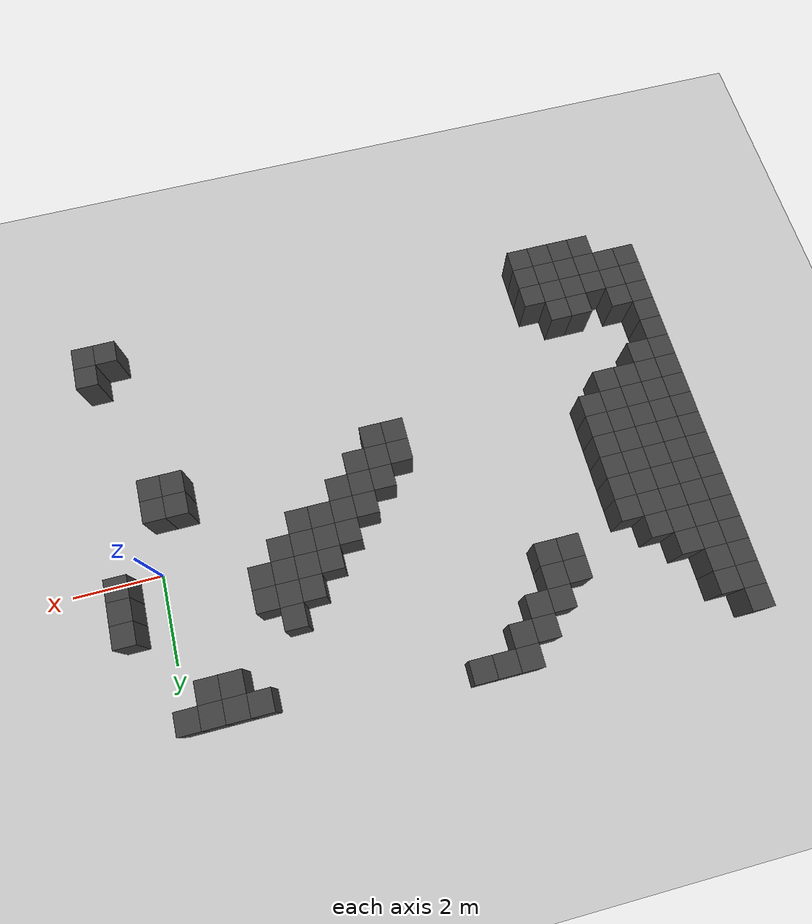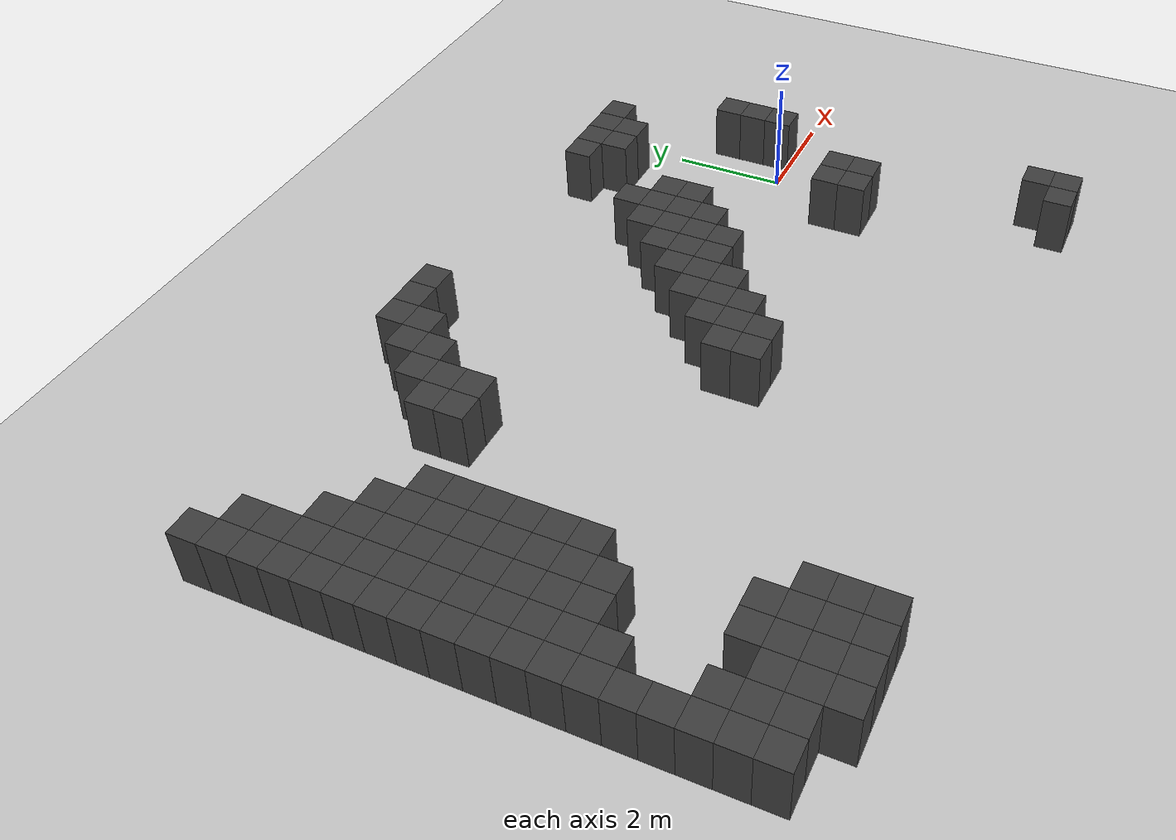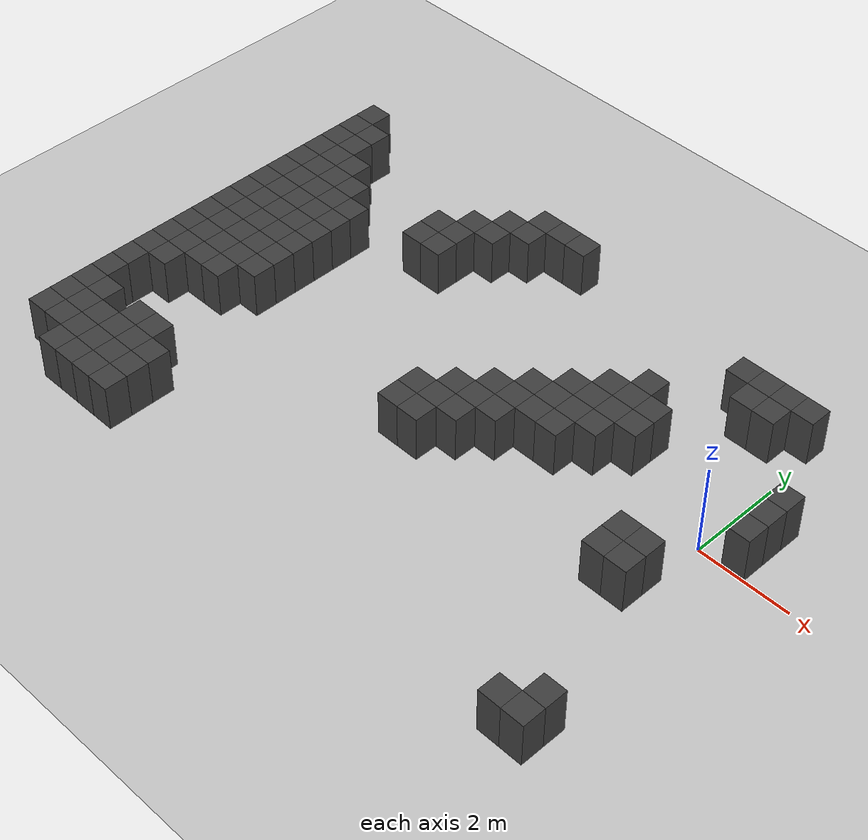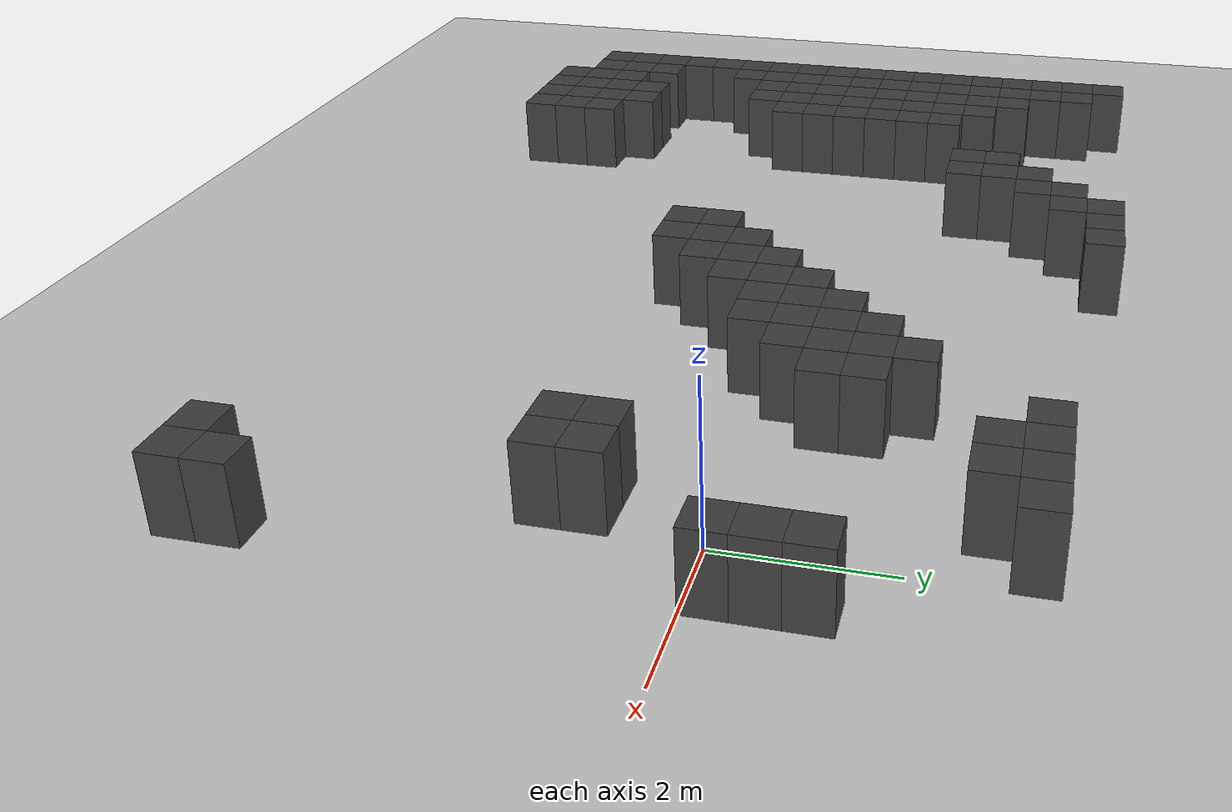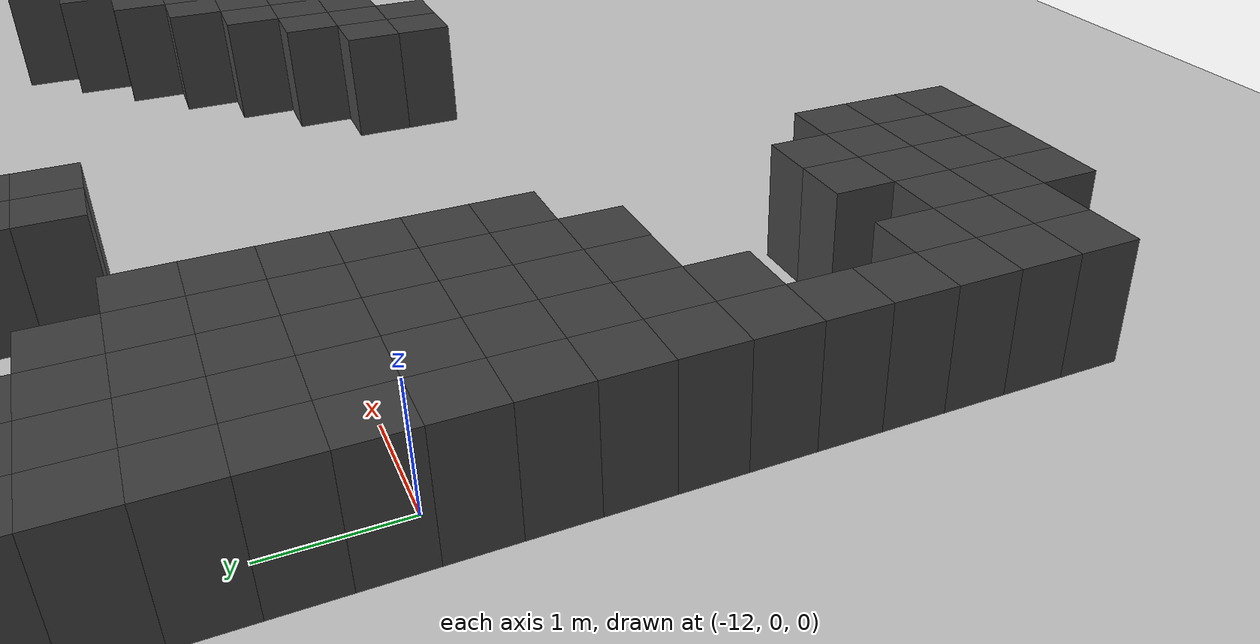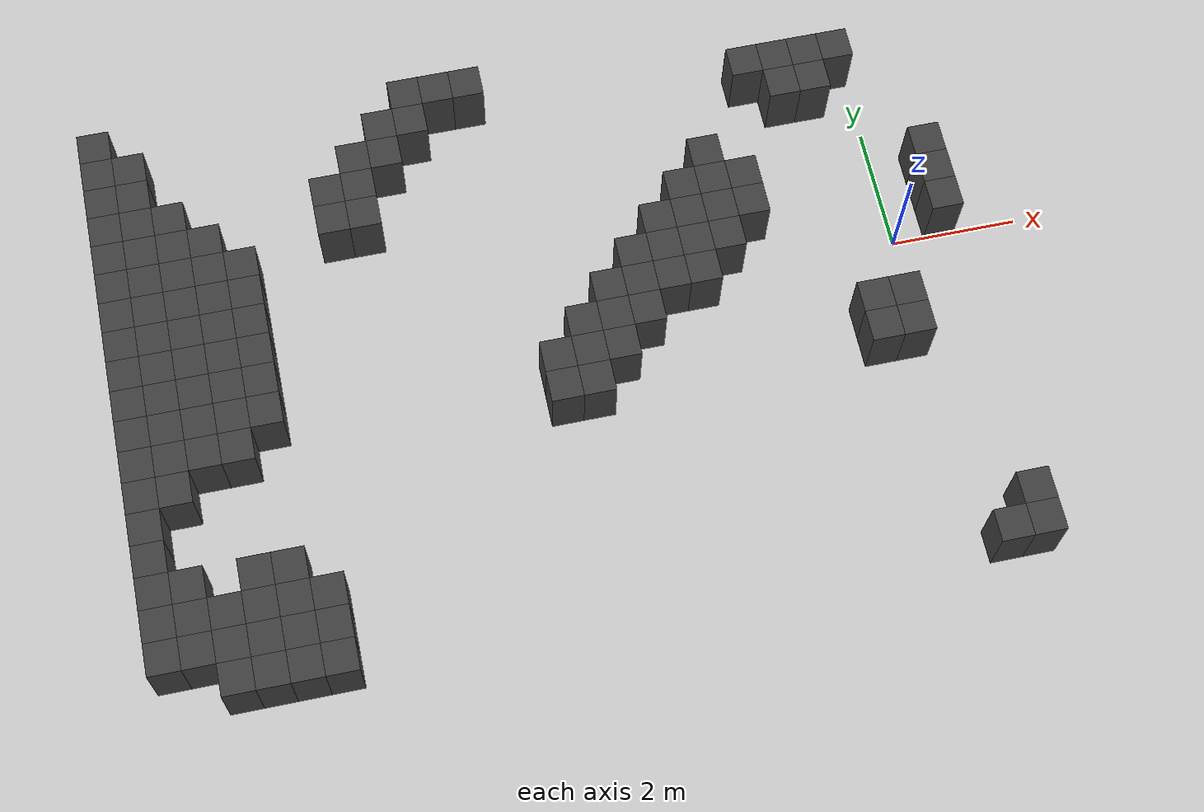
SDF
<sdf version="1.7">
 <world name="map_8661">
  <model name="ground_plane">
   <static>true</static>
   <link name="link">
    <collision name="collision">
     <geometry><plane><normal>0 0 1</normal><size>200 200</size></plane></geometry>
    </collision>
    <visual name="visual">
     <geometry><plane><normal>0 0 1</normal><size>200 200</size></plane></geometry>
     <material><ambient>0.8 0.8 0.8 1</ambient><diffuse>0.8 0.8 0.8 1</diffuse></material>
    </visual>
   </link>
  </model>
  <model name="maze_environment">
   <static>true</static>
   <link name="wall_243">
    <pose>-12.250 3.750 0.500 0 0 0</pose>
    <collision name="col"><geometry><box><size>0.5 0.5 1.0</size></box></geometry></collision>
    <visual name="vis">
     <geometry><box><size>0.5 0.5 1.0</size></box></geometry>
     <material><ambient>0.15 0.15 0.15 1</ambient><diffuse>0.25 0.25 0.25 1</diffuse></material>
    </visual>
   </link>
   <link name="wall_244">
    <pose>-7.250 3.750 0.500 0 0 0</pose>
    <collision name="col"><geometry><box><size>0.5 0.5 1.0</size></box></geometry></collision>
    <visual name="vis">
     <geometry><box><size>0.5 0.5 1.0</size></box></geometry>
     <material><ambient>0.15 0.15 0.15 1</ambient><diffuse>0.25 0.25 0.25 1</diffuse></material>
    </visual>
   </link>
   <link name="wall_245">
    <pose>-6.750 3.750 0.500 0 0 0</pose>
    <collision name="col"><geometry><box><size>0.5 0.5 1.0</size></box></geometry></collision>
    <visual name="vis">
     <geometry><box><size>0.5 0.5 1.0</size></box></geometry>
     <material><ambient>0.15 0.15 0.15 1</ambient><diffuse>0.25 0.25 0.25 1</diffuse></material>
    </visual>
   </link>
   <link name="wall_246">
    <pose>-6.250 3.750 0.500 0 0 0</pose>
    <collision name="col"><geometry><box><size>0.5 0.5 1.0</size></box></geometry></collision>
    <visual name="vis">
     <geometry><box><size>0.5 0.5 1.0</size></box></geometry>
     <material><ambient>0.15 0.15 0.15 1</ambient><diffuse>0.25 0.25 0.25 1</diffuse></material>
    </visual>
   </link>
   <link name="wall_257">
    <pose>-12.250 3.250 0.500 0 0 0</pose>
    <collision name="col"><geometry><box><size>0.5 0.5 1.0</size></box></geometry></collision>
    <visual name="vis">
     <geometry><box><size>0.5 0.5 1.0</size></box></geometry>
     <material><ambient>0.15 0.15 0.15 1</ambient><diffuse>0.25 0.25 0.25 1</diffuse></material>
    </visual>
   </link>
   <link name="wall_258">
    <pose>-11.750 3.250 0.500 0 0 0</pose>
    <collision name="col"><geometry><box><size>0.5 0.5 1.0</size></box></geometry></collision>
    <visual name="vis">
     <geometry><box><size>0.5 0.5 1.0</size></box></geometry>
     <material><ambient>0.15 0.15 0.15 1</ambient><diffuse>0.25 0.25 0.25 1</diffuse></material>
    </visual>
   </link>
   <link name="wall_259">
    <pose>-7.750 3.250 0.500 0 0 0</pose>
    <collision name="col"><geometry><box><size>0.5 0.5 1.0</size></box></geometry></collision>
    <visual name="vis">
     <geometry><box><size>0.5 0.5 1.0</size></box></geometry>
     <material><ambient>0.15 0.15 0.15 1</ambient><diffuse>0.25 0.25 0.25 1</diffuse></material>
    </visual>
   </link>
   <link name="wall_260">
    <pose>-7.250 3.250 0.500 0 0 0</pose>
    <collision name="col"><geometry><box><size>0.5 0.5 1.0</size></box></geometry></collision>
    <visual name="vis">
     <geometry><box><size>0.5 0.5 1.0</size></box></geometry>
     <material><ambient>0.15 0.15 0.15 1</ambient><diffuse>0.25 0.25 0.25 1</diffuse></material>
    </visual>
   </link>
   <link name="wall_261">
    <pose>-1.750 3.250 0.500 0 0 0</pose>
    <collision name="col"><geometry><box><size>0.5 0.5 1.0</size></box></geometry></collision>
    <visual name="vis">
     <geometry><box><size>0.5 0.5 1.0</size></box></geometry>
     <material><ambient>0.15 0.15 0.15 1</ambient><diffuse>0.25 0.25 0.25 1</diffuse></material>
    </visual>
   </link>
   <link name="wall_262">
    <pose>-1.250 3.250 0.500 0 0 0</pose>
    <collision name="col"><geometry><box><size>0.5 0.5 1.0</size></box></geometry></collision>
    <visual name="vis">
     <geometry><box><size>0.5 0.5 1.0</size></box></geometry>
     <material><ambient>0.15 0.15 0.15 1</ambient><diffuse>0.25 0.25 0.25 1</diffuse></material>
    </visual>
   </link>
   <link name="wall_263">
    <pose>-0.750 3.250 0.500 0 0 0</pose>
    <collision name="col"><geometry><box><size>0.5 0.5 1.0</size></box></geometry></collision>
    <visual name="vis">
     <geometry><box><size>0.5 0.5 1.0</size></box></geometry>
     <material><ambient>0.15 0.15 0.15 1</ambient><diffuse>0.25 0.25 0.25 1</diffuse></material>
    </visual>
   </link>
   <link name="wall_264">
    <pose>-0.250 3.250 0.500 0 0 0</pose>
    <collision name="col"><geometry><box><size>0.5 0.5 1.0</size></box></geometry></collision>
    <visual name="vis">
     <geometry><box><size>0.5 0.5 1.0</size></box></geometry>
     <material><ambient>0.15 0.15 0.15 1</ambient><diffuse>0.25 0.25 0.25 1</diffuse></material>
    </visual>
   </link>
   <link name="wall_274">
    <pose>-12.250 2.750 0.500 0 0 0</pose>
    <collision name="col"><geometry><box><size>0.5 0.5 1.0</size></box></geometry></collision>
    <visual name="vis">
     <geometry><box><size>0.5 0.5 1.0</size></box></geometry>
     <material><ambient>0.15 0.15 0.15 1</ambient><diffuse>0.25 0.25 0.25 1</diffuse></material>
    </visual>
   </link>
   <link name="wall_275">
    <pose>-11.750 2.750 0.500 0 0 0</pose>
    <collision name="col"><geometry><box><size>0.5 0.5 1.0</size></box></geometry></collision>
    <visual name="vis">
     <geometry><box><size>0.5 0.5 1.0</size></box></geometry>
     <material><ambient>0.15 0.15 0.15 1</ambient><diffuse>0.25 0.25 0.25 1</diffuse></material>
    </visual>
   </link>
   <link name="wall_276">
    <pose>-8.250 2.750 0.500 0 0 0</pose>
    <collision name="col"><geometry><box><size>0.5 0.5 1.0</size></box></geometry></collision>
    <visual name="vis">
     <geometry><box><size>0.5 0.5 1.0</size></box></geometry>
     <material><ambient>0.15 0.15 0.15 1</ambient><diffuse>0.25 0.25 0.25 1</diffuse></material>
    </visual>
   </link>
   <link name="wall_277">
    <pose>-7.750 2.750 0.500 0 0 0</pose>
    <collision name="col"><geometry><box><size>0.5 0.5 1.0</size></box></geometry></collision>
    <visual name="vis">
     <geometry><box><size>0.5 0.5 1.0</size></box></geometry>
     <material><ambient>0.15 0.15 0.15 1</ambient><diffuse>0.25 0.25 0.25 1</diffuse></material>
    </visual>
   </link>
   <link name="wall_278">
    <pose>-1.250 2.750 0.500 0 0 0</pose>
    <collision name="col"><geometry><box><size>0.5 0.5 1.0</size></box></geometry></collision>
    <visual name="vis">
     <geometry><box><size>0.5 0.5 1.0</size></box></geometry>
     <material><ambient>0.15 0.15 0.15 1</ambient><diffuse>0.25 0.25 0.25 1</diffuse></material>
    </visual>
   </link>
   <link name="wall_279">
    <pose>-0.750 2.750 0.500 0 0 0</pose>
    <collision name="col"><geometry><box><size>0.5 0.5 1.0</size></box></geometry></collision>
    <visual name="vis">
     <geometry><box><size>0.5 0.5 1.0</size></box></geometry>
     <material><ambient>0.15 0.15 0.15 1</ambient><diffuse>0.25 0.25 0.25 1</diffuse></material>
    </visual>
   </link>
   <link name="wall_289">
    <pose>-12.250 2.250 0.500 0 0 0</pose>
    <collision name="col"><geometry><box><size>0.5 0.5 1.0</size></box></geometry></collision>
    <visual name="vis">
     <geometry><box><size>0.5 0.5 1.0</size></box></geometry>
     <material><ambient>0.15 0.15 0.15 1</ambient><diffuse>0.25 0.25 0.25 1</diffuse></material>
    </visual>
   </link>
   <link name="wall_290">
    <pose>-11.750 2.250 0.500 0 0 0</pose>
    <collision name="col"><geometry><box><size>0.5 0.5 1.0</size></box></geometry></collision>
    <visual name="vis">
     <geometry><box><size>0.5 0.5 1.0</size></box></geometry>
     <material><ambient>0.15 0.15 0.15 1</ambient><diffuse>0.25 0.25 0.25 1</diffuse></material>
    </visual>
   </link>
   <link name="wall_291">
    <pose>-11.250 2.250 0.500 0 0 0</pose>
    <collision name="col"><geometry><box><size>0.5 0.5 1.0</size></box></geometry></collision>
    <visual name="vis">
     <geometry><box><size>0.5 0.5 1.0</size></box></geometry>
     <material><ambient>0.15 0.15 0.15 1</ambient><diffuse>0.25 0.25 0.25 1</diffuse></material>
    </visual>
   </link>
   <link name="wall_292">
    <pose>-8.750 2.250 0.500 0 0 0</pose>
    <collision name="col"><geometry><box><size>0.5 0.5 1.0</size></box></geometry></collision>
    <visual name="vis">
     <geometry><box><size>0.5 0.5 1.0</size></box></geometry>
     <material><ambient>0.15 0.15 0.15 1</ambient><diffuse>0.25 0.25 0.25 1</diffuse></material>
    </visual>
   </link>
   <link name="wall_293">
    <pose>-8.250 2.250 0.500 0 0 0</pose>
    <collision name="col"><geometry><box><size>0.5 0.5 1.0</size></box></geometry></collision>
    <visual name="vis">
     <geometry><box><size>0.5 0.5 1.0</size></box></geometry>
     <material><ambient>0.15 0.15 0.15 1</ambient><diffuse>0.25 0.25 0.25 1</diffuse></material>
    </visual>
   </link>
   <link name="wall_299">
    <pose>-12.250 1.750 0.500 0 0 0</pose>
    <collision name="col"><geometry><box><size>0.5 0.5 1.0</size></box></geometry></collision>
    <visual name="vis">
     <geometry><box><size>0.5 0.5 1.0</size></box></geometry>
     <material><ambient>0.15 0.15 0.15 1</ambient><diffuse>0.25 0.25 0.25 1</diffuse></material>
    </visual>
   </link>
   <link name="wall_300">
    <pose>-11.750 1.750 0.500 0 0 0</pose>
    <collision name="col"><geometry><box><size>0.5 0.5 1.0</size></box></geometry></collision>
    <visual name="vis">
     <geometry><box><size>0.5 0.5 1.0</size></box></geometry>
     <material><ambient>0.15 0.15 0.15 1</ambient><diffuse>0.25 0.25 0.25 1</diffuse></material>
    </visual>
   </link>
   <link name="wall_301">
    <pose>-11.250 1.750 0.500 0 0 0</pose>
    <collision name="col"><geometry><box><size>0.5 0.5 1.0</size></box></geometry></collision>
    <visual name="vis">
     <geometry><box><size>0.5 0.5 1.0</size></box></geometry>
     <material><ambient>0.15 0.15 0.15 1</ambient><diffuse>0.25 0.25 0.25 1</diffuse></material>
    </visual>
   </link>
   <link name="wall_302">
    <pose>-10.750 1.750 0.500 0 0 0</pose>
    <collision name="col"><geometry><box><size>0.5 0.5 1.0</size></box></geometry></collision>
    <visual name="vis">
     <geometry><box><size>0.5 0.5 1.0</size></box></geometry>
     <material><ambient>0.15 0.15 0.15 1</ambient><diffuse>0.25 0.25 0.25 1</diffuse></material>
    </visual>
   </link>
   <link name="wall_303">
    <pose>-8.750 1.750 0.500 0 0 0</pose>
    <collision name="col"><geometry><box><size>0.5 0.5 1.0</size></box></geometry></collision>
    <visual name="vis">
     <geometry><box><size>0.5 0.5 1.0</size></box></geometry>
     <material><ambient>0.15 0.15 0.15 1</ambient><diffuse>0.25 0.25 0.25 1</diffuse></material>
    </visual>
   </link>
   <link name="wall_304">
    <pose>-8.250 1.750 0.500 0 0 0</pose>
    <collision name="col"><geometry><box><size>0.5 0.5 1.0</size></box></geometry></collision>
    <visual name="vis">
     <geometry><box><size>0.5 0.5 1.0</size></box></geometry>
     <material><ambient>0.15 0.15 0.15 1</ambient><diffuse>0.25 0.25 0.25 1</diffuse></material>
    </visual>
   </link>
   <link name="wall_305">
    <pose>-2.750 1.750 0.500 0 0 0</pose>
    <collision name="col"><geometry><box><size>0.5 0.5 1.0</size></box></geometry></collision>
    <visual name="vis">
     <geometry><box><size>0.5 0.5 1.0</size></box></geometry>
     <material><ambient>0.15 0.15 0.15 1</ambient><diffuse>0.25 0.25 0.25 1</diffuse></material>
    </visual>
   </link>
   <link name="wall_309">
    <pose>-12.250 1.250 0.500 0 0 0</pose>
    <collision name="col"><geometry><box><size>0.5 0.5 1.0</size></box></geometry></collision>
    <visual name="vis">
     <geometry><box><size>0.5 0.5 1.0</size></box></geometry>
     <material><ambient>0.15 0.15 0.15 1</ambient><diffuse>0.25 0.25 0.25 1</diffuse></material>
    </visual>
   </link>
   <link name="wall_310">
    <pose>-11.750 1.250 0.500 0 0 0</pose>
    <collision name="col"><geometry><box><size>0.5 0.5 1.0</size></box></geometry></collision>
    <visual name="vis">
     <geometry><box><size>0.5 0.5 1.0</size></box></geometry>
     <material><ambient>0.15 0.15 0.15 1</ambient><diffuse>0.25 0.25 0.25 1</diffuse></material>
    </visual>
   </link>
   <link name="wall_311">
    <pose>-11.250 1.250 0.500 0 0 0</pose>
    <collision name="col"><geometry><box><size>0.5 0.5 1.0</size></box></geometry></collision>
    <visual name="vis">
     <geometry><box><size>0.5 0.5 1.0</size></box></geometry>
     <material><ambient>0.15 0.15 0.15 1</ambient><diffuse>0.25 0.25 0.25 1</diffuse></material>
    </visual>
   </link>
   <link name="wall_312">
    <pose>-10.750 1.250 0.500 0 0 0</pose>
    <collision name="col"><geometry><box><size>0.5 0.5 1.0</size></box></geometry></collision>
    <visual name="vis">
     <geometry><box><size>0.5 0.5 1.0</size></box></geometry>
     <material><ambient>0.15 0.15 0.15 1</ambient><diffuse>0.25 0.25 0.25 1</diffuse></material>
    </visual>
   </link>
   <link name="wall_313">
    <pose>-10.250 1.250 0.500 0 0 0</pose>
    <collision name="col"><geometry><box><size>0.5 0.5 1.0</size></box></geometry></collision>
    <visual name="vis">
     <geometry><box><size>0.5 0.5 1.0</size></box></geometry>
     <material><ambient>0.15 0.15 0.15 1</ambient><diffuse>0.25 0.25 0.25 1</diffuse></material>
    </visual>
   </link>
   <link name="wall_314">
    <pose>-3.250 1.250 0.500 0 0 0</pose>
    <collision name="col"><geometry><box><size>0.5 0.5 1.0</size></box></geometry></collision>
    <visual name="vis">
     <geometry><box><size>0.5 0.5 1.0</size></box></geometry>
     <material><ambient>0.15 0.15 0.15 1</ambient><diffuse>0.25 0.25 0.25 1</diffuse></material>
    </visual>
   </link>
   <link name="wall_315">
    <pose>-2.750 1.250 0.500 0 0 0</pose>
    <collision name="col"><geometry><box><size>0.5 0.5 1.0</size></box></geometry></collision>
    <visual name="vis">
     <geometry><box><size>0.5 0.5 1.0</size></box></geometry>
     <material><ambient>0.15 0.15 0.15 1</ambient><diffuse>0.25 0.25 0.25 1</diffuse></material>
    </visual>
   </link>
   <link name="wall_316">
    <pose>-2.250 1.250 0.500 0 0 0</pose>
    <collision name="col"><geometry><box><size>0.5 0.5 1.0</size></box></geometry></collision>
    <visual name="vis">
     <geometry><box><size>0.5 0.5 1.0</size></box></geometry>
     <material><ambient>0.15 0.15 0.15 1</ambient><diffuse>0.25 0.25 0.25 1</diffuse></material>
    </visual>
   </link>
   <link name="wall_317">
    <pose>0.750 1.250 0.500 0 0 0</pose>
    <collision name="col"><geometry><box><size>0.5 0.5 1.0</size></box></geometry></collision>
    <visual name="vis">
     <geometry><box><size>0.5 0.5 1.0</size></box></geometry>
     <material><ambient>0.15 0.15 0.15 1</ambient><diffuse>0.25 0.25 0.25 1</diffuse></material>
    </visual>
   </link>
   <link name="wall_321">
    <pose>-12.250 0.750 0.500 0 0 0</pose>
    <collision name="col"><geometry><box><size>0.5 0.5 1.0</size></box></geometry></collision>
    <visual name="vis">
     <geometry><box><size>0.5 0.5 1.0</size></box></geometry>
     <material><ambient>0.15 0.15 0.15 1</ambient><diffuse>0.25 0.25 0.25 1</diffuse></material>
    </visual>
   </link>
   <link name="wall_322">
    <pose>-11.750 0.750 0.500 0 0 0</pose>
    <collision name="col"><geometry><box><size>0.5 0.5 1.0</size></box></geometry></collision>
    <visual name="vis">
     <geometry><box><size>0.5 0.5 1.0</size></box></geometry>
     <material><ambient>0.15 0.15 0.15 1</ambient><diffuse>0.25 0.25 0.25 1</diffuse></material>
    </visual>
   </link>
   <link name="wall_323">
    <pose>-11.250 0.750 0.500 0 0 0</pose>
    <collision name="col"><geometry><box><size>0.5 0.5 1.0</size></box></geometry></collision>
    <visual name="vis">
     <geometry><box><size>0.5 0.5 1.0</size></box></geometry>
     <material><ambient>0.15 0.15 0.15 1</ambient><diffuse>0.25 0.25 0.25 1</diffuse></material>
    </visual>
   </link>
   <link name="wall_324">
    <pose>-10.750 0.750 0.500 0 0 0</pose>
    <collision name="col"><geometry><box><size>0.5 0.5 1.0</size></box></geometry></collision>
    <visual name="vis">
     <geometry><box><size>0.5 0.5 1.0</size></box></geometry>
     <material><ambient>0.15 0.15 0.15 1</ambient><diffuse>0.25 0.25 0.25 1</diffuse></material>
    </visual>
   </link>
   <link name="wall_325">
    <pose>-10.250 0.750 0.500 0 0 0</pose>
    <collision name="col"><geometry><box><size>0.5 0.5 1.0</size></box></geometry></collision>
    <visual name="vis">
     <geometry><box><size>0.5 0.5 1.0</size></box></geometry>
     <material><ambient>0.15 0.15 0.15 1</ambient><diffuse>0.25 0.25 0.25 1</diffuse></material>
    </visual>
   </link>
   <link name="wall_326">
    <pose>-3.750 0.750 0.500 0 0 0</pose>
    <collision name="col"><geometry><box><size>0.5 0.5 1.0</size></box></geometry></collision>
    <visual name="vis">
     <geometry><box><size>0.5 0.5 1.0</size></box></geometry>
     <material><ambient>0.15 0.15 0.15 1</ambient><diffuse>0.25 0.25 0.25 1</diffuse></material>
    </visual>
   </link>
   <link name="wall_327">
    <pose>-3.250 0.750 0.500 0 0 0</pose>
    <collision name="col"><geometry><box><size>0.5 0.5 1.0</size></box></geometry></collision>
    <visual name="vis">
     <geometry><box><size>0.5 0.5 1.0</size></box></geometry>
     <material><ambient>0.15 0.15 0.15 1</ambient><diffuse>0.25 0.25 0.25 1</diffuse></material>
    </visual>
   </link>
   <link name="wall_328">
    <pose>-2.750 0.750 0.500 0 0 0</pose>
    <collision name="col"><geometry><box><size>0.5 0.5 1.0</size></box></geometry></collision>
    <visual name="vis">
     <geometry><box><size>0.5 0.5 1.0</size></box></geometry>
     <material><ambient>0.15 0.15 0.15 1</ambient><diffuse>0.25 0.25 0.25 1</diffuse></material>
    </visual>
   </link>
   <link name="wall_329">
    <pose>-2.250 0.750 0.500 0 0 0</pose>
    <collision name="col"><geometry><box><size>0.5 0.5 1.0</size></box></geometry></collision>
    <visual name="vis">
     <geometry><box><size>0.5 0.5 1.0</size></box></geometry>
     <material><ambient>0.15 0.15 0.15 1</ambient><diffuse>0.25 0.25 0.25 1</diffuse></material>
    </visual>
   </link>
   <link name="wall_330">
    <pose>0.750 0.750 0.500 0 0 0</pose>
    <collision name="col"><geometry><box><size>0.5 0.5 1.0</size></box></geometry></collision>
    <visual name="vis">
     <geometry><box><size>0.5 0.5 1.0</size></box></geometry>
     <material><ambient>0.15 0.15 0.15 1</ambient><diffuse>0.25 0.25 0.25 1</diffuse></material>
    </visual>
   </link>
   <link name="wall_334">
    <pose>-12.250 0.250 0.500 0 0 0</pose>
    <collision name="col"><geometry><box><size>0.5 0.5 1.0</size></box></geometry></collision>
    <visual name="vis">
     <geometry><box><size>0.5 0.5 1.0</size></box></geometry>
     <material><ambient>0.15 0.15 0.15 1</ambient><diffuse>0.25 0.25 0.25 1</diffuse></material>
    </visual>
   </link>
   <link name="wall_335">
    <pose>-11.750 0.250 0.500 0 0 0</pose>
    <collision name="col"><geometry><box><size>0.5 0.5 1.0</size></box></geometry></collision>
    <visual name="vis">
     <geometry><box><size>0.5 0.5 1.0</size></box></geometry>
     <material><ambient>0.15 0.15 0.15 1</ambient><diffuse>0.25 0.25 0.25 1</diffuse></material>
    </visual>
   </link>
   <link name="wall_336">
    <pose>-11.250 0.250 0.500 0 0 0</pose>
    <collision name="col"><geometry><box><size>0.5 0.5 1.0</size></box></geometry></collision>
    <visual name="vis">
     <geometry><box><size>0.5 0.5 1.0</size></box></geometry>
     <material><ambient>0.15 0.15 0.15 1</ambient><diffuse>0.25 0.25 0.25 1</diffuse></material>
    </visual>
   </link>
   <link name="wall_337">
    <pose>-10.750 0.250 0.500 0 0 0</pose>
    <collision name="col"><geometry><box><size>0.5 0.5 1.0</size></box></geometry></collision>
    <visual name="vis">
     <geometry><box><size>0.5 0.5 1.0</size></box></geometry>
     <material><ambient>0.15 0.15 0.15 1</ambient><diffuse>0.25 0.25 0.25 1</diffuse></material>
    </visual>
   </link>
   <link name="wall_338">
    <pose>-10.250 0.250 0.500 0 0 0</pose>
    <collision name="col"><geometry><box><size>0.5 0.5 1.0</size></box></geometry></collision>
    <visual name="vis">
     <geometry><box><size>0.5 0.5 1.0</size></box></geometry>
     <material><ambient>0.15 0.15 0.15 1</ambient><diffuse>0.25 0.25 0.25 1</diffuse></material>
    </visual>
   </link>
   <link name="wall_339">
    <pose>-4.250 0.250 0.500 0 0 0</pose>
    <collision name="col"><geometry><box><size>0.5 0.5 1.0</size></box></geometry></collision>
    <visual name="vis">
     <geometry><box><size>0.5 0.5 1.0</size></box></geometry>
     <material><ambient>0.15 0.15 0.15 1</ambient><diffuse>0.25 0.25 0.25 1</diffuse></material>
    </visual>
   </link>
   <link name="wall_340">
    <pose>-3.750 0.250 0.500 0 0 0</pose>
    <collision name="col"><geometry><box><size>0.5 0.5 1.0</size></box></geometry></collision>
    <visual name="vis">
     <geometry><box><size>0.5 0.5 1.0</size></box></geometry>
     <material><ambient>0.15 0.15 0.15 1</ambient><diffuse>0.25 0.25 0.25 1</diffuse></material>
    </visual>
   </link>
   <link name="wall_341">
    <pose>-3.250 0.250 0.500 0 0 0</pose>
    <collision name="col"><geometry><box><size>0.5 0.5 1.0</size></box></geometry></collision>
    <visual name="vis">
     <geometry><box><size>0.5 0.5 1.0</size></box></geometry>
     <material><ambient>0.15 0.15 0.15 1</ambient><diffuse>0.25 0.25 0.25 1</diffuse></material>
    </visual>
   </link>
   <link name="wall_342">
    <pose>-2.750 0.250 0.500 0 0 0</pose>
    <collision name="col"><geometry><box><size>0.5 0.5 1.0</size></box></geometry></collision>
    <visual name="vis">
     <geometry><box><size>0.5 0.5 1.0</size></box></geometry>
     <material><ambient>0.15 0.15 0.15 1</ambient><diffuse>0.25 0.25 0.25 1</diffuse></material>
    </visual>
   </link>
   <link name="wall_343">
    <pose>0.750 0.250 0.500 0 0 0</pose>
    <collision name="col"><geometry><box><size>0.5 0.5 1.0</size></box></geometry></collision>
    <visual name="vis">
     <geometry><box><size>0.5 0.5 1.0</size></box></geometry>
     <material><ambient>0.15 0.15 0.15 1</ambient><diffuse>0.25 0.25 0.25 1</diffuse></material>
    </visual>
   </link>
   <link name="wall_351">
    <pose>-12.250 -0.250 0.500 0 0 0</pose>
    <collision name="col"><geometry><box><size>0.5 0.5 1.0</size></box></geometry></collision>
    <visual name="vis">
     <geometry><box><size>0.5 0.5 1.0</size></box></geometry>
     <material><ambient>0.15 0.15 0.15 1</ambient><diffuse>0.25 0.25 0.25 1</diffuse></material>
    </visual>
   </link>
   <link name="wall_352">
    <pose>-11.750 -0.250 0.500 0 0 0</pose>
    <collision name="col"><geometry><box><size>0.5 0.5 1.0</size></box></geometry></collision>
    <visual name="vis">
     <geometry><box><size>0.5 0.5 1.0</size></box></geometry>
     <material><ambient>0.15 0.15 0.15 1</ambient><diffuse>0.25 0.25 0.25 1</diffuse></material>
    </visual>
   </link>
   <link name="wall_353">
    <pose>-11.250 -0.250 0.500 0 0 0</pose>
    <collision name="col"><geometry><box><size>0.5 0.5 1.0</size></box></geometry></collision>
    <visual name="vis">
     <geometry><box><size>0.5 0.5 1.0</size></box></geometry>
     <material><ambient>0.15 0.15 0.15 1</ambient><diffuse>0.25 0.25 0.25 1</diffuse></material>
    </visual>
   </link>
   <link name="wall_354">
    <pose>-10.750 -0.250 0.500 0 0 0</pose>
    <collision name="col"><geometry><box><size>0.5 0.5 1.0</size></box></geometry></collision>
    <visual name="vis">
     <geometry><box><size>0.5 0.5 1.0</size></box></geometry>
     <material><ambient>0.15 0.15 0.15 1</ambient><diffuse>0.25 0.25 0.25 1</diffuse></material>
    </visual>
   </link>
   <link name="wall_355">
    <pose>-10.250 -0.250 0.500 0 0 0</pose>
    <collision name="col"><geometry><box><size>0.5 0.5 1.0</size></box></geometry></collision>
    <visual name="vis">
     <geometry><box><size>0.5 0.5 1.0</size></box></geometry>
     <material><ambient>0.15 0.15 0.15 1</ambient><diffuse>0.25 0.25 0.25 1</diffuse></material>
    </visual>
   </link>
   <link name="wall_356">
    <pose>-4.750 -0.250 0.500 0 0 0</pose>
    <collision name="col"><geometry><box><size>0.5 0.5 1.0</size></box></geometry></collision>
    <visual name="vis">
     <geometry><box><size>0.5 0.5 1.0</size></box></geometry>
     <material><ambient>0.15 0.15 0.15 1</ambient><diffuse>0.25 0.25 0.25 1</diffuse></material>
    </visual>
   </link>
   <link name="wall_357">
    <pose>-4.250 -0.250 0.500 0 0 0</pose>
    <collision name="col"><geometry><box><size>0.5 0.5 1.0</size></box></geometry></collision>
    <visual name="vis">
     <geometry><box><size>0.5 0.5 1.0</size></box></geometry>
     <material><ambient>0.15 0.15 0.15 1</ambient><diffuse>0.25 0.25 0.25 1</diffuse></material>
    </visual>
   </link>
   <link name="wall_358">
    <pose>-3.750 -0.250 0.500 0 0 0</pose>
    <collision name="col"><geometry><box><size>0.5 0.5 1.0</size></box></geometry></collision>
    <visual name="vis">
     <geometry><box><size>0.5 0.5 1.0</size></box></geometry>
     <material><ambient>0.15 0.15 0.15 1</ambient><diffuse>0.25 0.25 0.25 1</diffuse></material>
    </visual>
   </link>
   <link name="wall_359">
    <pose>-3.250 -0.250 0.500 0 0 0</pose>
    <collision name="col"><geometry><box><size>0.5 0.5 1.0</size></box></geometry></collision>
    <visual name="vis">
     <geometry><box><size>0.5 0.5 1.0</size></box></geometry>
     <material><ambient>0.15 0.15 0.15 1</ambient><diffuse>0.25 0.25 0.25 1</diffuse></material>
    </visual>
   </link>
   <link name="wall_371">
    <pose>-12.250 -0.750 0.500 0 0 0</pose>
    <collision name="col"><geometry><box><size>0.5 0.5 1.0</size></box></geometry></collision>
    <visual name="vis">
     <geometry><box><size>0.5 0.5 1.0</size></box></geometry>
     <material><ambient>0.15 0.15 0.15 1</ambient><diffuse>0.25 0.25 0.25 1</diffuse></material>
    </visual>
   </link>
   <link name="wall_372">
    <pose>-11.750 -0.750 0.500 0 0 0</pose>
    <collision name="col"><geometry><box><size>0.5 0.5 1.0</size></box></geometry></collision>
    <visual name="vis">
     <geometry><box><size>0.5 0.5 1.0</size></box></geometry>
     <material><ambient>0.15 0.15 0.15 1</ambient><diffuse>0.25 0.25 0.25 1</diffuse></material>
    </visual>
   </link>
   <link name="wall_373">
    <pose>-11.250 -0.750 0.500 0 0 0</pose>
    <collision name="col"><geometry><box><size>0.5 0.5 1.0</size></box></geometry></collision>
    <visual name="vis">
     <geometry><box><size>0.5 0.5 1.0</size></box></geometry>
     <material><ambient>0.15 0.15 0.15 1</ambient><diffuse>0.25 0.25 0.25 1</diffuse></material>
    </visual>
   </link>
   <link name="wall_374">
    <pose>-10.750 -0.750 0.500 0 0 0</pose>
    <collision name="col"><geometry><box><size>0.5 0.5 1.0</size></box></geometry></collision>
    <visual name="vis">
     <geometry><box><size>0.5 0.5 1.0</size></box></geometry>
     <material><ambient>0.15 0.15 0.15 1</ambient><diffuse>0.25 0.25 0.25 1</diffuse></material>
    </visual>
   </link>
   <link name="wall_375">
    <pose>-10.250 -0.750 0.500 0 0 0</pose>
    <collision name="col"><geometry><box><size>0.5 0.5 1.0</size></box></geometry></collision>
    <visual name="vis">
     <geometry><box><size>0.5 0.5 1.0</size></box></geometry>
     <material><ambient>0.15 0.15 0.15 1</ambient><diffuse>0.25 0.25 0.25 1</diffuse></material>
    </visual>
   </link>
   <link name="wall_376">
    <pose>-5.250 -0.750 0.500 0 0 0</pose>
    <collision name="col"><geometry><box><size>0.5 0.5 1.0</size></box></geometry></collision>
    <visual name="vis">
     <geometry><box><size>0.5 0.5 1.0</size></box></geometry>
     <material><ambient>0.15 0.15 0.15 1</ambient><diffuse>0.25 0.25 0.25 1</diffuse></material>
    </visual>
   </link>
   <link name="wall_377">
    <pose>-4.750 -0.750 0.500 0 0 0</pose>
    <collision name="col"><geometry><box><size>0.5 0.5 1.0</size></box></geometry></collision>
    <visual name="vis">
     <geometry><box><size>0.5 0.5 1.0</size></box></geometry>
     <material><ambient>0.15 0.15 0.15 1</ambient><diffuse>0.25 0.25 0.25 1</diffuse></material>
    </visual>
   </link>
   <link name="wall_378">
    <pose>-4.250 -0.750 0.500 0 0 0</pose>
    <collision name="col"><geometry><box><size>0.5 0.5 1.0</size></box></geometry></collision>
    <visual name="vis">
     <geometry><box><size>0.5 0.5 1.0</size></box></geometry>
     <material><ambient>0.15 0.15 0.15 1</ambient><diffuse>0.25 0.25 0.25 1</diffuse></material>
    </visual>
   </link>
   <link name="wall_392">
    <pose>-12.250 -1.250 0.500 0 0 0</pose>
    <collision name="col"><geometry><box><size>0.5 0.5 1.0</size></box></geometry></collision>
    <visual name="vis">
     <geometry><box><size>0.5 0.5 1.0</size></box></geometry>
     <material><ambient>0.15 0.15 0.15 1</ambient><diffuse>0.25 0.25 0.25 1</diffuse></material>
    </visual>
   </link>
   <link name="wall_393">
    <pose>-11.750 -1.250 0.500 0 0 0</pose>
    <collision name="col"><geometry><box><size>0.5 0.5 1.0</size></box></geometry></collision>
    <visual name="vis">
     <geometry><box><size>0.5 0.5 1.0</size></box></geometry>
     <material><ambient>0.15 0.15 0.15 1</ambient><diffuse>0.25 0.25 0.25 1</diffuse></material>
    </visual>
   </link>
   <link name="wall_394">
    <pose>-11.250 -1.250 0.500 0 0 0</pose>
    <collision name="col"><geometry><box><size>0.5 0.5 1.0</size></box></geometry></collision>
    <visual name="vis">
     <geometry><box><size>0.5 0.5 1.0</size></box></geometry>
     <material><ambient>0.15 0.15 0.15 1</ambient><diffuse>0.25 0.25 0.25 1</diffuse></material>
    </visual>
   </link>
   <link name="wall_395">
    <pose>-10.750 -1.250 0.500 0 0 0</pose>
    <collision name="col"><geometry><box><size>0.5 0.5 1.0</size></box></geometry></collision>
    <visual name="vis">
     <geometry><box><size>0.5 0.5 1.0</size></box></geometry>
     <material><ambient>0.15 0.15 0.15 1</ambient><diffuse>0.25 0.25 0.25 1</diffuse></material>
    </visual>
   </link>
   <link name="wall_396">
    <pose>-10.250 -1.250 0.500 0 0 0</pose>
    <collision name="col"><geometry><box><size>0.5 0.5 1.0</size></box></geometry></collision>
    <visual name="vis">
     <geometry><box><size>0.5 0.5 1.0</size></box></geometry>
     <material><ambient>0.15 0.15 0.15 1</ambient><diffuse>0.25 0.25 0.25 1</diffuse></material>
    </visual>
   </link>
   <link name="wall_397">
    <pose>-5.750 -1.250 0.500 0 0 0</pose>
    <collision name="col"><geometry><box><size>0.5 0.5 1.0</size></box></geometry></collision>
    <visual name="vis">
     <geometry><box><size>0.5 0.5 1.0</size></box></geometry>
     <material><ambient>0.15 0.15 0.15 1</ambient><diffuse>0.25 0.25 0.25 1</diffuse></material>
    </visual>
   </link>
   <link name="wall_398">
    <pose>-5.250 -1.250 0.500 0 0 0</pose>
    <collision name="col"><geometry><box><size>0.5 0.5 1.0</size></box></geometry></collision>
    <visual name="vis">
     <geometry><box><size>0.5 0.5 1.0</size></box></geometry>
     <material><ambient>0.15 0.15 0.15 1</ambient><diffuse>0.25 0.25 0.25 1</diffuse></material>
    </visual>
   </link>
   <link name="wall_399">
    <pose>-4.750 -1.250 0.500 0 0 0</pose>
    <collision name="col"><geometry><box><size>0.5 0.5 1.0</size></box></geometry></collision>
    <visual name="vis">
     <geometry><box><size>0.5 0.5 1.0</size></box></geometry>
     <material><ambient>0.15 0.15 0.15 1</ambient><diffuse>0.25 0.25 0.25 1</diffuse></material>
    </visual>
   </link>
   <link name="wall_400">
    <pose>-0.750 -1.250 0.500 0 0 0</pose>
    <collision name="col"><geometry><box><size>0.5 0.5 1.0</size></box></geometry></collision>
    <visual name="vis">
     <geometry><box><size>0.5 0.5 1.0</size></box></geometry>
     <material><ambient>0.15 0.15 0.15 1</ambient><diffuse>0.25 0.25 0.25 1</diffuse></material>
    </visual>
   </link>
   <link name="wall_401">
    <pose>-0.250 -1.250 0.500 0 0 0</pose>
    <collision name="col"><geometry><box><size>0.5 0.5 1.0</size></box></geometry></collision>
    <visual name="vis">
     <geometry><box><size>0.5 0.5 1.0</size></box></geometry>
     <material><ambient>0.15 0.15 0.15 1</ambient><diffuse>0.25 0.25 0.25 1</diffuse></material>
    </visual>
   </link>
   <link name="wall_413">
    <pose>-12.250 -1.750 0.500 0 0 0</pose>
    <collision name="col"><geometry><box><size>0.5 0.5 1.0</size></box></geometry></collision>
    <visual name="vis">
     <geometry><box><size>0.5 0.5 1.0</size></box></geometry>
     <material><ambient>0.15 0.15 0.15 1</ambient><diffuse>0.25 0.25 0.25 1</diffuse></material>
    </visual>
   </link>
   <link name="wall_414">
    <pose>-11.750 -1.750 0.500 0 0 0</pose>
    <collision name="col"><geometry><box><size>0.5 0.5 1.0</size></box></geometry></collision>
    <visual name="vis">
     <geometry><box><size>0.5 0.5 1.0</size></box></geometry>
     <material><ambient>0.15 0.15 0.15 1</ambient><diffuse>0.25 0.25 0.25 1</diffuse></material>
    </visual>
   </link>
   <link name="wall_415">
    <pose>-11.250 -1.750 0.500 0 0 0</pose>
    <collision name="col"><geometry><box><size>0.5 0.5 1.0</size></box></geometry></collision>
    <visual name="vis">
     <geometry><box><size>0.5 0.5 1.0</size></box></geometry>
     <material><ambient>0.15 0.15 0.15 1</ambient><diffuse>0.25 0.25 0.25 1</diffuse></material>
    </visual>
   </link>
   <link name="wall_416">
    <pose>-10.750 -1.750 0.500 0 0 0</pose>
    <collision name="col"><geometry><box><size>0.5 0.5 1.0</size></box></geometry></collision>
    <visual name="vis">
     <geometry><box><size>0.5 0.5 1.0</size></box></geometry>
     <material><ambient>0.15 0.15 0.15 1</ambient><diffuse>0.25 0.25 0.25 1</diffuse></material>
    </visual>
   </link>
   <link name="wall_417">
    <pose>-5.750 -1.750 0.500 0 0 0</pose>
    <collision name="col"><geometry><box><size>0.5 0.5 1.0</size></box></geometry></collision>
    <visual name="vis">
     <geometry><box><size>0.5 0.5 1.0</size></box></geometry>
     <material><ambient>0.15 0.15 0.15 1</ambient><diffuse>0.25 0.25 0.25 1</diffuse></material>
    </visual>
   </link>
   <link name="wall_418">
    <pose>-5.250 -1.750 0.500 0 0 0</pose>
    <collision name="col"><geometry><box><size>0.5 0.5 1.0</size></box></geometry></collision>
    <visual name="vis">
     <geometry><box><size>0.5 0.5 1.0</size></box></geometry>
     <material><ambient>0.15 0.15 0.15 1</ambient><diffuse>0.25 0.25 0.25 1</diffuse></material>
    </visual>
   </link>
   <link name="wall_419">
    <pose>-0.750 -1.750 0.500 0 0 0</pose>
    <collision name="col"><geometry><box><size>0.5 0.5 1.0</size></box></geometry></collision>
    <visual name="vis">
     <geometry><box><size>0.5 0.5 1.0</size></box></geometry>
     <material><ambient>0.15 0.15 0.15 1</ambient><diffuse>0.25 0.25 0.25 1</diffuse></material>
    </visual>
   </link>
   <link name="wall_420">
    <pose>-0.250 -1.750 0.500 0 0 0</pose>
    <collision name="col"><geometry><box><size>0.5 0.5 1.0</size></box></geometry></collision>
    <visual name="vis">
     <geometry><box><size>0.5 0.5 1.0</size></box></geometry>
     <material><ambient>0.15 0.15 0.15 1</ambient><diffuse>0.25 0.25 0.25 1</diffuse></material>
    </visual>
   </link>
   <link name="wall_430">
    <pose>-12.250 -2.250 0.500 0 0 0</pose>
    <collision name="col"><geometry><box><size>0.5 0.5 1.0</size></box></geometry></collision>
    <visual name="vis">
     <geometry><box><size>0.5 0.5 1.0</size></box></geometry>
     <material><ambient>0.15 0.15 0.15 1</ambient><diffuse>0.25 0.25 0.25 1</diffuse></material>
    </visual>
   </link>
   <link name="wall_431">
    <pose>-11.750 -2.250 0.500 0 0 0</pose>
    <collision name="col"><geometry><box><size>0.5 0.5 1.0</size></box></geometry></collision>
    <visual name="vis">
     <geometry><box><size>0.5 0.5 1.0</size></box></geometry>
     <material><ambient>0.15 0.15 0.15 1</ambient><diffuse>0.25 0.25 0.25 1</diffuse></material>
    </visual>
   </link>
   <link name="wall_439">
    <pose>-12.250 -2.750 0.500 0 0 0</pose>
    <collision name="col"><geometry><box><size>0.5 0.5 1.0</size></box></geometry></collision>
    <visual name="vis">
     <geometry><box><size>0.5 0.5 1.0</size></box></geometry>
     <material><ambient>0.15 0.15 0.15 1</ambient><diffuse>0.25 0.25 0.25 1</diffuse></material>
    </visual>
   </link>
   <link name="wall_448">
    <pose>-12.250 -3.250 0.500 0 0 0</pose>
    <collision name="col"><geometry><box><size>0.5 0.5 1.0</size></box></geometry></collision>
    <visual name="vis">
     <geometry><box><size>0.5 0.5 1.0</size></box></geometry>
     <material><ambient>0.15 0.15 0.15 1</ambient><diffuse>0.25 0.25 0.25 1</diffuse></material>
    </visual>
   </link>
   <link name="wall_458">
    <pose>-12.250 -3.750 0.500 0 0 0</pose>
    <collision name="col"><geometry><box><size>0.5 0.5 1.0</size></box></geometry></collision>
    <visual name="vis">
     <geometry><box><size>0.5 0.5 1.0</size></box></geometry>
     <material><ambient>0.15 0.15 0.15 1</ambient><diffuse>0.25 0.25 0.25 1</diffuse></material>
    </visual>
   </link>
   <link name="wall_459">
    <pose>-11.750 -3.750 0.500 0 0 0</pose>
    <collision name="col"><geometry><box><size>0.5 0.5 1.0</size></box></geometry></collision>
    <visual name="vis">
     <geometry><box><size>0.5 0.5 1.0</size></box></geometry>
     <material><ambient>0.15 0.15 0.15 1</ambient><diffuse>0.25 0.25 0.25 1</diffuse></material>
    </visual>
   </link>
   <link name="wall_460">
    <pose>-10.750 -3.750 0.500 0 0 0</pose>
    <collision name="col"><geometry><box><size>0.5 0.5 1.0</size></box></geometry></collision>
    <visual name="vis">
     <geometry><box><size>0.5 0.5 1.0</size></box></geometry>
     <material><ambient>0.15 0.15 0.15 1</ambient><diffuse>0.25 0.25 0.25 1</diffuse></material>
    </visual>
   </link>
   <link name="wall_461">
    <pose>-10.250 -3.750 0.500 0 0 0</pose>
    <collision name="col"><geometry><box><size>0.5 0.5 1.0</size></box></geometry></collision>
    <visual name="vis">
     <geometry><box><size>0.5 0.5 1.0</size></box></geometry>
     <material><ambient>0.15 0.15 0.15 1</ambient><diffuse>0.25 0.25 0.25 1</diffuse></material>
    </visual>
   </link>
   <link name="wall_472">
    <pose>-12.250 -4.250 0.500 0 0 0</pose>
    <collision name="col"><geometry><box><size>0.5 0.5 1.0</size></box></geometry></collision>
    <visual name="vis">
     <geometry><box><size>0.5 0.5 1.0</size></box></geometry>
     <material><ambient>0.15 0.15 0.15 1</ambient><diffuse>0.25 0.25 0.25 1</diffuse></material>
    </visual>
   </link>
   <link name="wall_473">
    <pose>-11.750 -4.250 0.500 0 0 0</pose>
    <collision name="col"><geometry><box><size>0.5 0.5 1.0</size></box></geometry></collision>
    <visual name="vis">
     <geometry><box><size>0.5 0.5 1.0</size></box></geometry>
     <material><ambient>0.15 0.15 0.15 1</ambient><diffuse>0.25 0.25 0.25 1</diffuse></material>
    </visual>
   </link>
   <link name="wall_474">
    <pose>-11.250 -4.250 0.500 0 0 0</pose>
    <collision name="col"><geometry><box><size>0.5 0.5 1.0</size></box></geometry></collision>
    <visual name="vis">
     <geometry><box><size>0.5 0.5 1.0</size></box></geometry>
     <material><ambient>0.15 0.15 0.15 1</ambient><diffuse>0.25 0.25 0.25 1</diffuse></material>
    </visual>
   </link>
   <link name="wall_475">
    <pose>-10.750 -4.250 0.500 0 0 0</pose>
    <collision name="col"><geometry><box><size>0.5 0.5 1.0</size></box></geometry></collision>
    <visual name="vis">
     <geometry><box><size>0.5 0.5 1.0</size></box></geometry>
     <material><ambient>0.15 0.15 0.15 1</ambient><diffuse>0.25 0.25 0.25 1</diffuse></material>
    </visual>
   </link>
   <link name="wall_476">
    <pose>-10.250 -4.250 0.500 0 0 0</pose>
    <collision name="col"><geometry><box><size>0.5 0.5 1.0</size></box></geometry></collision>
    <visual name="vis">
     <geometry><box><size>0.5 0.5 1.0</size></box></geometry>
     <material><ambient>0.15 0.15 0.15 1</ambient><diffuse>0.25 0.25 0.25 1</diffuse></material>
    </visual>
   </link>
   <link name="wall_477">
    <pose>-9.750 -4.250 0.500 0 0 0</pose>
    <collision name="col"><geometry><box><size>0.5 0.5 1.0</size></box></geometry></collision>
    <visual name="vis">
     <geometry><box><size>0.5 0.5 1.0</size></box></geometry>
     <material><ambient>0.15 0.15 0.15 1</ambient><diffuse>0.25 0.25 0.25 1</diffuse></material>
    </visual>
   </link>
   <link name="wall_486">
    <pose>-12.250 -4.750 0.500 0 0 0</pose>
    <collision name="col"><geometry><box><size>0.5 0.5 1.0</size></box></geometry></collision>
    <visual name="vis">
     <geometry><box><size>0.5 0.5 1.0</size></box></geometry>
     <material><ambient>0.15 0.15 0.15 1</ambient><diffuse>0.25 0.25 0.25 1</diffuse></material>
    </visual>
   </link>
   <link name="wall_487">
    <pose>-11.750 -4.750 0.500 0 0 0</pose>
    <collision name="col"><geometry><box><size>0.5 0.5 1.0</size></box></geometry></collision>
    <visual name="vis">
     <geometry><box><size>0.5 0.5 1.0</size></box></geometry>
     <material><ambient>0.15 0.15 0.15 1</ambient><diffuse>0.25 0.25 0.25 1</diffuse></material>
    </visual>
   </link>
   <link name="wall_488">
    <pose>-11.250 -4.750 0.500 0 0 0</pose>
    <collision name="col"><geometry><box><size>0.5 0.5 1.0</size></box></geometry></collision>
    <visual name="vis">
     <geometry><box><size>0.5 0.5 1.0</size></box></geometry>
     <material><ambient>0.15 0.15 0.15 1</ambient><diffuse>0.25 0.25 0.25 1</diffuse></material>
    </visual>
   </link>
   <link name="wall_489">
    <pose>-10.750 -4.750 0.500 0 0 0</pose>
    <collision name="col"><geometry><box><size>0.5 0.5 1.0</size></box></geometry></collision>
    <visual name="vis">
     <geometry><box><size>0.5 0.5 1.0</size></box></geometry>
     <material><ambient>0.15 0.15 0.15 1</ambient><diffuse>0.25 0.25 0.25 1</diffuse></material>
    </visual>
   </link>
   <link name="wall_490">
    <pose>-10.250 -4.750 0.500 0 0 0</pose>
    <collision name="col"><geometry><box><size>0.5 0.5 1.0</size></box></geometry></collision>
    <visual name="vis">
     <geometry><box><size>0.5 0.5 1.0</size></box></geometry>
     <material><ambient>0.15 0.15 0.15 1</ambient><diffuse>0.25 0.25 0.25 1</diffuse></material>
    </visual>
   </link>
   <link name="wall_491">
    <pose>-9.750 -4.750 0.500 0 0 0</pose>
    <collision name="col"><geometry><box><size>0.5 0.5 1.0</size></box></geometry></collision>
    <visual name="vis">
     <geometry><box><size>0.5 0.5 1.0</size></box></geometry>
     <material><ambient>0.15 0.15 0.15 1</ambient><diffuse>0.25 0.25 0.25 1</diffuse></material>
    </visual>
   </link>
   <link name="wall_492">
    <pose>0.750 -4.750 0.500 0 0 0</pose>
    <collision name="col"><geometry><box><size>0.5 0.5 1.0</size></box></geometry></collision>
    <visual name="vis">
     <geometry><box><size>0.5 0.5 1.0</size></box></geometry>
     <material><ambient>0.15 0.15 0.15 1</ambient><diffuse>0.25 0.25 0.25 1</diffuse></material>
    </visual>
   </link>
   <link name="wall_502">
    <pose>-11.250 -5.250 0.500 0 0 0</pose>
    <collision name="col"><geometry><box><size>0.5 0.5 1.0</size></box></geometry></collision>
    <visual name="vis">
     <geometry><box><size>0.5 0.5 1.0</size></box></geometry>
     <material><ambient>0.15 0.15 0.15 1</ambient><diffuse>0.25 0.25 0.25 1</diffuse></material>
    </visual>
   </link>
   <link name="wall_503">
    <pose>-10.750 -5.250 0.500 0 0 0</pose>
    <collision name="col"><geometry><box><size>0.5 0.5 1.0</size></box></geometry></collision>
    <visual name="vis">
     <geometry><box><size>0.5 0.5 1.0</size></box></geometry>
     <material><ambient>0.15 0.15 0.15 1</ambient><diffuse>0.25 0.25 0.25 1</diffuse></material>
    </visual>
   </link>
   <link name="wall_504">
    <pose>-10.250 -5.250 0.500 0 0 0</pose>
    <collision name="col"><geometry><box><size>0.5 0.5 1.0</size></box></geometry></collision>
    <visual name="vis">
     <geometry><box><size>0.5 0.5 1.0</size></box></geometry>
     <material><ambient>0.15 0.15 0.15 1</ambient><diffuse>0.25 0.25 0.25 1</diffuse></material>
    </visual>
   </link>
   <link name="wall_505">
    <pose>-9.750 -5.250 0.500 0 0 0</pose>
    <collision name="col"><geometry><box><size>0.5 0.5 1.0</size></box></geometry></collision>
    <visual name="vis">
     <geometry><box><size>0.5 0.5 1.0</size></box></geometry>
     <material><ambient>0.15 0.15 0.15 1</ambient><diffuse>0.25 0.25 0.25 1</diffuse></material>
    </visual>
   </link>
   <link name="wall_506">
    <pose>0.250 -5.250 0.500 0 0 0</pose>
    <collision name="col"><geometry><box><size>0.5 0.5 1.0</size></box></geometry></collision>
    <visual name="vis">
     <geometry><box><size>0.5 0.5 1.0</size></box></geometry>
     <material><ambient>0.15 0.15 0.15 1</ambient><diffuse>0.25 0.25 0.25 1</diffuse></material>
    </visual>
   </link>
   <link name="wall_507">
    <pose>0.750 -5.250 0.500 0 0 0</pose>
    <collision name="col"><geometry><box><size>0.5 0.5 1.0</size></box></geometry></collision>
    <visual name="vis">
     <geometry><box><size>0.5 0.5 1.0</size></box></geometry>
     <material><ambient>0.15 0.15 0.15 1</ambient><diffuse>0.25 0.25 0.25 1</diffuse></material>
    </visual>
   </link>
  </model>
 </world>
</sdf>
